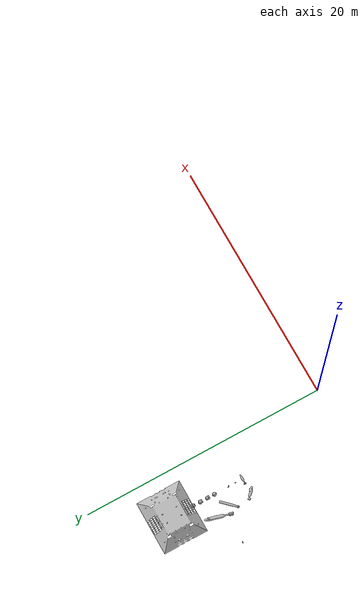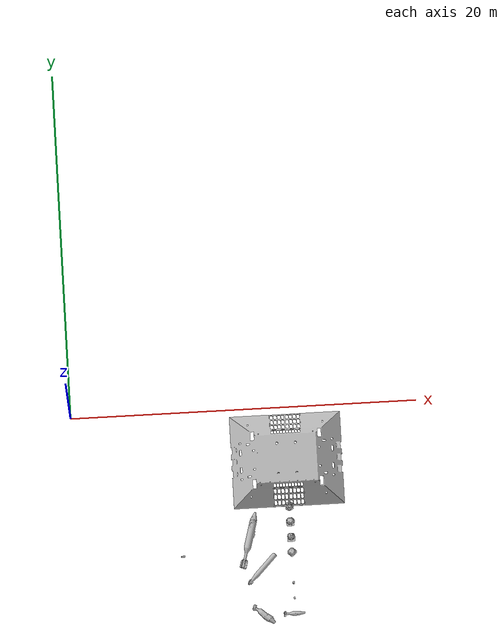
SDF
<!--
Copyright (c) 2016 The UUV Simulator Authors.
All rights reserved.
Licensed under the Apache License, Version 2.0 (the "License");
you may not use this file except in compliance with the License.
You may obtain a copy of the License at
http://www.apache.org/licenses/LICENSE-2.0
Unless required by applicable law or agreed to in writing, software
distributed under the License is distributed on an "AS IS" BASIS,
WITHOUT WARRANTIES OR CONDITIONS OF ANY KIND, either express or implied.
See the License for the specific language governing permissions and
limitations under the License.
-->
<sdf version="1.4">
 <world name="oceans_waves">
  <physics name="default_physics" default="true" type="ode">
   <max_step_size>0.002</max_step_size>
   <real_time_factor>1</real_time_factor>
   <real_time_update_rate>500</real_time_update_rate>
  </physics>
  <scene>
   <ambient>0.01 0.01 0.01 1.0</ambient>
   <sky><clouds><speed>12</speed></clouds></sky>
   <shadows>1</shadows>
  </scene>
  <gravity>0 0 -10</gravity>
  <spherical_coordinates>
   <longitude_deg>76.4334063</longitude_deg>
   <latitude_deg>-40.8458253</latitude_deg>
  </spherical_coordinates>
  <light type="directional" name="sun1">
   <pose>50 0 150 0 0 0</pose>
   <diffuse>1 1 1 1</diffuse>
   <specular>.1 .1 .1 1</specular>
   <direction>0.3 0.3 -1</direction>
   <cast_shadows>false</cast_shadows>
  </light>
  <light type="directional" name="sun_diffuse">
   <pose>-50 0 -150 0 0 0</pose>
   <diffuse>0.6 0.6 0.6 1</diffuse>
   <specular>0 0 0 1</specular>
   <direction>-0.3 -0.3 -1</direction>
   <cast_shadows>false</cast_shadows>
  </light>
  <include><uri>model://ned_frame</uri></include>
  <include><name>torpedo_mk46</name><pose>11 -1 -94 0 0 0.8</pose><uri>model://torpedo_mk46</uri></include>
  <include><name>sonobuoy</name><pose>13 -2 -94 0 0 0</pose><uri>model://sonobuoy</uri></include>
  <include>
   <name>flight_data_recorder</name>
   <pose>13 -3 -94 0 0 0</pose>
   <uri>model://flight_data_recorder</uri>
  </include>
  <include><name>uxo_a</name><pose>13 -4 -94 0 0 0</pose><uri>model://uxo_a</uri></include>
  <include><name>uxo_b</name><pose>11 -4 -94 0 0 -0.7</pose><uri>model://uxo_b</uri></include>
  <include><name>uxo_c</name><pose>10 0 -94 0 0 1.3</pose><uri>model://uxo_c</uri></include>
  <include><name>hardhat_standard</name><pose>13 0 -94 0 0 0</pose><uri>model://hardhat_standard</uri></include>
  <include><name>hardhat_ribbed</name><pose>13 1 -94 0 0 0</pose><uri>model://hardhat_ribbed</uri></include>
  <include>
   <name>hardhat_superribbed</name>
   <pose>13 2 -94 0 0 0</pose>
   <uri>model://hardhat_superribbed</uri>
  </include>
  <include>
   <name>hardhat_octagonal</name>
   <pose>13 3 -94 0 0 0</pose>
   <uri>model://hardhat_octagonal</uri>
  </include>
  <include><name>mbari_mars</name><pose>13 6 -94 0 0 0</pose><uri>model://mbari_mars</uri></include>
  <include>
   <uri>model://blueview_p900_nps_multibeam_ray</uri>
   <name>blueview_p900_raster</name>
   <pose>6 0 -93 3.14159265359 0.25 0</pose>
   <static>true</static>
  </include>
  <plugin name="sc_interface" filename="libuuv_sc_ros_interface_plugin.so"/>
 </world>
</sdf>

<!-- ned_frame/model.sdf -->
<sdf version='1.5'>
    <model name="world_ned">

      <pose>0 0 0 0 0 0</pose>
      <static>true</static>

      <link name="world_ned">
        <gravity>0</gravity>
        <pose>0 0 0 3.14159265359 0 1.5707963267948966</pose>

        <visual name="N_visual">
          <pose>0.25 0 0 1.5707963267948966 0 1.5707963267948966</pose>
          <geometry>
            <cylinder>
              <radius>0.01</radius>
              <length>0.5</length>
            </cylinder>
          </geometry>
          <material>
            <script>
              <uri>file://media/materials/scripts/gazebo.material</uri>
              <name>Gazebo/Red</name>
            </script>
          </material>
        </visual>

        <visual name="E_visual">
          <pose>0 0.25 0 1.5707963267948966 0 0</pose>
          <geometry>
            <cylinder>
              <radius>0.01</radius>
              <length>0.5</length>
            </cylinder>
          </geometry>
          <material>
            <script>
              <uri>file://media/materials/scripts/gazebo.material</uri>
              <name>Gazebo/Green</name>
            </script>
          </material>
        </visual>

        <visual name="D_visual">
          <pose>0 0 0.25 0 0 0</pose>
          <geometry>
            <cylinder>
              <radius>0.01</radius>
              <length>0.5</length>
            </cylinder>
          </geometry>
          <material>
            <script>
              <uri>file://media/materials/scripts/gazebo.material</uri>
              <name>Gazebo/Blue</name>
            </script>
          </material>
        </visual>
      </link>
    </model>
</sdf>

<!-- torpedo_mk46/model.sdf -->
<sdf version="1.6">
  <model name="torpedo_mk46">
    <static>false</static>
    <link name="base_link">
      <inertial>
        <!-- See python script in model folder for calcs -->
        <mass>40</mass>
        <inertia>
          <ixx>0.53</ixx>
          <ixy>0.0</ixy>
          <ixz>0.0</ixz>
          <iyy>18.0</iyy>
          <iyz>0.0</iyz>
          <izz>18.0</izz>
        </inertia>
      </inertial>
      <visual name="visual">
        <geometry>
           <mesh>
            <uri>file://torpedo_mk46/meshes/torpedo_mk46.dae</uri>
          </mesh>
        </geometry>
      </visual>
      <collision name="collision">
        <pose>0 0 0 0 0 0</pose>
        <geometry>
          <mesh>
            <uri>file://torpedo_mk46/meshes/torpedo_mk46_collision.dae</uri>
          </mesh>
        </geometry>
      </collision>
    </link>
  </model>
</sdf>

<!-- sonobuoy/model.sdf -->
<sdf version="1.6">
  <model name="sonobuoy">
    <static>false</static>
    <link name="base_link">
      <inertial>
        <!-- See python script in model folder for calcs -->
        <mass>5.6</mass>
        <inertia>
          <ixx>0.39</ixx>
          <ixy>0.0</ixy>
          <ixz>0.0</ixz>
          <iyy>0.39</iyy>
          <iyz>0.0</iyz>
          <izz>0.012</izz>
        </inertia>
      </inertial>
      <visual name="visual">
        <geometry>
           <mesh>
            <uri>file://sonobuoy/meshes/sonobuoy.dae</uri>
          </mesh>
        </geometry>
      </visual>
      <collision name="collision">
        <pose>0 0 0 0 0 0</pose>
        <geometry>
          <mesh>
            <uri>file://sonobuoy/meshes/sonobuoy_collision.dae</uri>
          </mesh>
        </geometry>
      </collision>
    </link>
  </model>
</sdf>

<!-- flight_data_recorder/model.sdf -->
<sdf version="1.6">
  <model name="flight_data_recorder">
    <static>false</static>
    <link name="base_link">
      <inertial>
        <mass>1</mass>
        <inertia>
          <ixx>0.04</ixx>
          <ixy>0.0</ixy>
          <ixz>0.0</ixz>
          <iyy>0.04</iyy>
          <iyz>0.0</iyz>
          <izz>0.04</izz>
        </inertia>
      </inertial>
      <visual name="visual">
        <geometry>
           <mesh>
            <scale> 2.0 2.0 2.0 </scale>
            <uri>file://flight_data_recorder/meshes/flight_data_recorder.dae</uri>
          </mesh>
        </geometry>
      </visual>
      <collision name="collision">

        <pose>0 0 0 0 0 0</pose>
        <geometry>
          <mesh>
            <scale> 2.0 2.0 2.0 </scale>
            <uri>file://flight_data_recorder/meshes/flight_data_recorder_collision.dae</uri>
          </mesh>
        </geometry>
      </collision>
    </link>
  </model>
</sdf>

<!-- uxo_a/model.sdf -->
<sdf version="1.6">
  <model name="uxo_a">
    <static>false</static>
    <link name="base_link">
      <inertial>
        <mass>25</mass>
        <inertia>
          <ixx>0.12</ixx>
          <ixy>0.0</ixy>
          <ixz>0.0</ixz>
          <iyy>2.6</iyy>
          <iyz>0.0</iyz>
          <izz>2.6</izz>
        </inertia>
      </inertial>
      <visual name="visual">
        <geometry>
           <mesh>
            <uri>file://uxo_a/meshes/uxo_a.dae</uri>
          </mesh>
        </geometry>
      </visual>
      <collision name="collision">
        <pose>0 0 0 0 0 0</pose>
        <geometry>
          <mesh>
            <uri>file://uxo_a/meshes/uxo_a_collision.dae</uri>
          </mesh>
        </geometry>
      </collision>
    </link>
  </model>
</sdf>

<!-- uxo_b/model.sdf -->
<sdf version="1.6">
  <model name="uxo_b">
    <static>false</static>
    <link name="base_link">
      <inertial>
        <mass>15</mass>
        <inertia>
          <ixx>0.17</ixx>
          <ixy>0.0</ixy>
          <ixz>0.0</ixz>
          <iyy>1.9</iyy>
          <iyz>0.0</iyz>
          <izz>1.9</izz>
        </inertia>
      </inertial>
      <visual name="visual">
        <geometry>
           <mesh>
            <uri>file://uxo_b/meshes/uxo_b.dae</uri>
          </mesh>
        </geometry>
      </visual>
      <collision name="collision">
        <pose>0 0 0 0 0 0</pose>
        <geometry>
          <mesh>
            <uri>file://uxo_b/meshes/uxo_b_collision.dae</uri>
          </mesh>
        </geometry>
      </collision>
    </link>
  </model>
</sdf>

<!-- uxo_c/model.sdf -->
<sdf version="1.6">
  <model name="uxo_c">
    <static>false</static>
    <link name="base_link">
      <inertial>
        <pose>0.5 0 0 0 0 0</pose>
        <mass>33.0</mass>
        <inertia>
          <ixx>0.67</ixx>
          <ixy>0.0</ixy>
          <ixz>0.0</ixz>
          <iyy>19</iyy>
          <iyz>0.0</iyz>
          <izz>19</izz>
        </inertia>
      </inertial>
      <visual name="visual">
        <geometry>
           <mesh>
            <uri>file://uxo_c/meshes/uxo_c.dae</uri>
          </mesh>
        </geometry>
      </visual>
      <collision name="collision">
        <pose>0 0 0 0 0 0</pose>
        <geometry>
          <mesh>
            <uri>file://uxo_c/meshes/uxo_c_collision.dae</uri>
          </mesh>
        </geometry>
      </collision>
    </link>
  </model>
</sdf>

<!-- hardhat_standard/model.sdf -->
<sdf version="1.6">
  <model name="hardhat_standard">
    <static>false</static>
    <link name="base_link">
      <inertial>
        <mass>17.7</mass>
        <inertia>
          <ixx>0.55</ixx>
          <ixy>0.0</ixy>
          <ixz>0.0</ixz>
          <iyy>0.55</iyy>
          <iyz>0.0</iyz>
          <izz>0.55</izz>
        </inertia>
      </inertial>
      <visual name="visual">
        <geometry>
           <mesh>
            <uri>file://hardhat_standard/meshes/hardhat_standard.dae</uri>
          </mesh>
        </geometry>
      </visual>
      <collision name="collision">
        <pose>0 0 0 0 0 0</pose>
        <geometry>
          <mesh>
	    <uri>file://hardhat_standard/meshes/hardhat_standard_collision.dae</uri>
          </mesh>
        </geometry>
      </collision>
    </link>
  </model>
</sdf>

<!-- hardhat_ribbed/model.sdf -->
<sdf version="1.6">
  <model name="hardhat_ribbed">
    <static>false</static>
    <link name="base_link">
      <inertial>
        <mass>17.7</mass>
        <inertia>
          <ixx>0.55</ixx>
          <ixy>0.0</ixy>
          <ixz>0.0</ixz>
          <iyy>0.55</iyy>
          <iyz>0.0</iyz>
          <izz>0.55</izz>
        </inertia>
      </inertial>
      <visual name="visual">
        <geometry>
           <mesh>
            <uri>file://hardhat_ribbed/meshes/hardhat_ribbed.dae</uri>
          </mesh>
        </geometry>
      </visual>
      <collision name="collision">
        <pose>0 0 0 0 0 0</pose>
        <geometry>
          <mesh>
	    <uri>file://hardhat_ribbed/meshes/hardhat_ribbed_collision.dae</uri>
          </mesh>
        </geometry>
      </collision>
    </link>
  </model>
</sdf>

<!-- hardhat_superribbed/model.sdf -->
<sdf version="1.6">
  <model name="hardhat_superribbed">
    <static>false</static>
    <link name="base_link">
      <inertial>
        <mass>17.7</mass>
        <inertia>
          <ixx>0.55</ixx>
          <ixy>0.0</ixy>
          <ixz>0.0</ixz>
          <iyy>0.55</iyy>
          <iyz>0.0</iyz>
          <izz>0.55</izz>
        </inertia>
      </inertial>
      <visual name="visual">
        <geometry>
           <mesh>
            <uri>file://hardhat_superribbed/meshes/hardhat_superribbed.dae</uri>
          </mesh>
        </geometry>
      </visual>
      <collision name="collision">
        <pose>0 0 0 0 0 0</pose>
        <geometry>
          <mesh>
	    <uri>file://hardhat_superribbed/meshes/hardhat_superribbed_collision.dae</uri>
          </mesh>
        </geometry>
      </collision>
    </link>
  </model>
</sdf>

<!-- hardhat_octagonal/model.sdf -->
<sdf version="1.6">
  <model name="hardhat_octagonal">
    <static>false</static>
    <link name="base_link">
      <inertial>
        <mass>17.7</mass>
        <inertia>
          <ixx>0.55</ixx>
          <ixy>0.0</ixy>
          <ixz>0.0</ixz>
          <iyy>0.55</iyy>
          <iyz>0.0</iyz>
          <izz>0.55</izz>
        </inertia>
      </inertial>
      <visual name="visual">
        <geometry>
           <mesh>
            <uri>file://hardhat_octagonal/meshes/hardhat_octagonal.dae</uri>
          </mesh>
        </geometry>
      </visual>
      <collision name="collision">
        <pose>0 0 0 0 0 0</pose>
        <geometry>
          <mesh>
	    <uri>file://hardhat_octagonal/meshes/hardhat_octagonal_collision.dae</uri>
          </mesh>
        </geometry>
      </collision>
    </link>
  </model>
</sdf>

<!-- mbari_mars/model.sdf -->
<sdf version="1.6">
  <model name="mbari_mars">
    <static>false</static>
    <link name="base_link">
      <inertial>
        <mass>100</mass>
        <inertia>
          <ixx>5</ixx>
          <ixy>0.0</ixy>
          <ixz>0.0</ixz>
          <iyy>5</iyy>
          <iyz>0.0</iyz>
          <izz>5</izz>
        </inertia>
      </inertial>
      <visual name="visual">
        <geometry>
           <mesh>
            <uri>file://mbari_mars/meshes/mbari_mars.dae</uri>
          </mesh>
        </geometry>
      </visual>
      <collision name="collision">
        <pose>0 0 0 0 0 0</pose>
        <geometry>
          <mesh>
	    <uri>file://mbari_mars/meshes/mbari_mars_collision.dae</uri>
          </mesh>
        </geometry>
      </collision>
    </link>
  </model>
</sdf>

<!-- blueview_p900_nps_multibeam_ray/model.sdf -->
<sdf version="1.6">
  <model name="blueview_p900_ray">
    <link name="forward_sonar_link">
      <inertial>
        <pose>0 0 0 0 0 0</pose>
        <mass>4.35</mass>
        <inertia>
          <ixx>0.0360</ixx>          <!-- 1/12ml^2 -->
          <ixy>0</ixy>
          <ixz>0</ixz>
          <iyy>0</iyy>
          <iyz>0</iyz>
          <izz>0.0360</izz>
        </inertia>
      </inertial>
      <collision name="collision">
        <geometry>
          <mesh>
            <uri>model://blueview_p900_nps_multibeam/meshes/COLLISION-p900.dae</uri>
          </mesh>
        </geometry>
      </collision>
      <visual name="visual">
        <geometry>
          <mesh>
            <uri>model://blueview_p900_nps_multibeam/meshes/p900.dae</uri>
          </mesh>
        </geometry>
      </visual>

      <sensor name="ray_sonar" type="gpu_ray">
        <visualize>false</visualize>
        <always_on>true</always_on>
        <update_rate>20</update_rate>

        <ray>
          <scan>
            <!-- Set horizontal FOV by setting image height -->
            <!-- 512 beams with 90 degrees horizontal FOV (M900-90) -->
            <horizontal>
              <samples>512</samples>
              <resolution>1</resolution>
              <min_angle>-0.78539816339</min_angle>
              <max_angle>0.78539816339</max_angle>
            </horizontal>
            <!-- Set vertical FOV by setting image height -->
            <!-- Approx 2 times the spec sheet (sepc: 20 deg.) -->
            <vertical>
              <samples>300</samples>
              <resolution>1</resolution>
              <min_angle>-0.349066</min_angle>
              <max_angle>0.349066</max_angle>
            </vertical>
          </scan>
          <range>
            <!-- min range is a collision range no need to change-->
            <min>0.1</min>
            <max>10.0</max>
            <resolution>0.1</resolution>
          </range>
          <noise>
            <type>gaussian</type>
            <mean>0.0</mean>
            <stddev>0.01</stddev>
          </noise>
        </ray>

        <plugin name="ray_sonar_sensor" filename="libgazebo_ros_velodyne_gpu_laser.so">
           <topicName>multibeam_sonar_point_cloud</topicName>
           <static_reference_frame>forward_sonar_optical_link</static_reference_frame>
           <organize_cloud>true</organize_cloud>
           <min_range>0.2</min_range>
           <max_range>10.0</max_range>
        </plugin>

        <plugin filename="libnps_multibeam_sonar_ray_ros_plugin.so" name="forward_sonar">
          <!-- Sonar properties -->
          <verticalFOV>20</verticalFOV>
          <sonarFreq>900e3</sonarFreq>
          <bandwidth>29.9e3</bandwidth>
          <soundSpeed>1500</soundSpeed>
          <sourceLevel>220</sourceLevel>
          <maxDistance>10</maxDistance>
          <raySkips>1</raySkips>
          <sensorGain>0.02</sensorGain>
          <plotScaler>0</plotScaler>
          <writeLog>true</writeLog>
          <debugFlag>false</debugFlag>
          <writeFrameInterval>5</writeFrameInterval>
          <!-- This name is prepended to ROS topics -->
          <cameraName>blueview_p900</cameraName>
          <!-- ROS publication topics -->
          <imageTopicName>image_raw</imageTopicName>
          <cameraInfoTopicName>image_raw/camera_info</cameraInfoTopicName>
          <pointCloudTopicName>multibeam_sonar_point_cloud</pointCloudTopicName>
          <depthImageTopicName>image_depth</depthImageTopicName>
          <depthImageCameraInfoTopicName>image_depth/camera_info</depthImageCameraInfoTopicName>
          <sonarImageRawTopicName>sonar_image_raw</sonarImageRawTopicName>
          <sonarImageTopicName>sonar_image</sonarImageTopicName>
          <frameName>forward_sonar_optical_link</frameName>
        </plugin>
      </sensor>
    </link>

    <link name="forward_sonar_beam_visual_link">
      <inertial>
        <pose>0 0 0 0 0 0</pose>
        <mass>0.0001</mass>
        <inertia>
          <ixx>0.0000000017</ixx>          <!-- 1/12ml^2 -->
          <ixy>0</ixy>
          <ixz>0</ixz>
          <iyy>0.00000000017</iyy>
          <iyz>0</iyz>
          <izz>0.00000000017</izz>
        </inertia>
      </inertial>
      <sensor type="ray" name="forward_sonar_beam_visual">
        <pose>0 0 0 0 0 0</pose>
        <update_rate>5</update_rate>
        <visualize>true</visualize>
        <ray>
          <scan>
            <horizontal>
              <samples>10</samples>
              <resolution>1</resolution>
              <min_angle>-0.785398</min_angle>
              <max_angle>0.785398</max_angle>
            </horizontal>
            <vertical>
              <samples>3</samples>
              <resolution>1</resolution>
              <min_angle>-0.174533</min_angle>
              <max_angle>0.174533</max_angle>
            </vertical>
          </scan>
          <range>
            <min>0.2</min>
            <max>60</max>
            <resolution>0.01</resolution>
          </range>
        </ray>
      </sensor>
    </link>

    <joint name="forward_sonar_beam_visual_joint" type="fixed">
      <pose>0 0 0 0 0 0</pose>
      <parent>forward_sonar_link</parent>
      <child>forward_sonar_beam_visual_link</child>
    </joint>

  </model>
</sdf>
